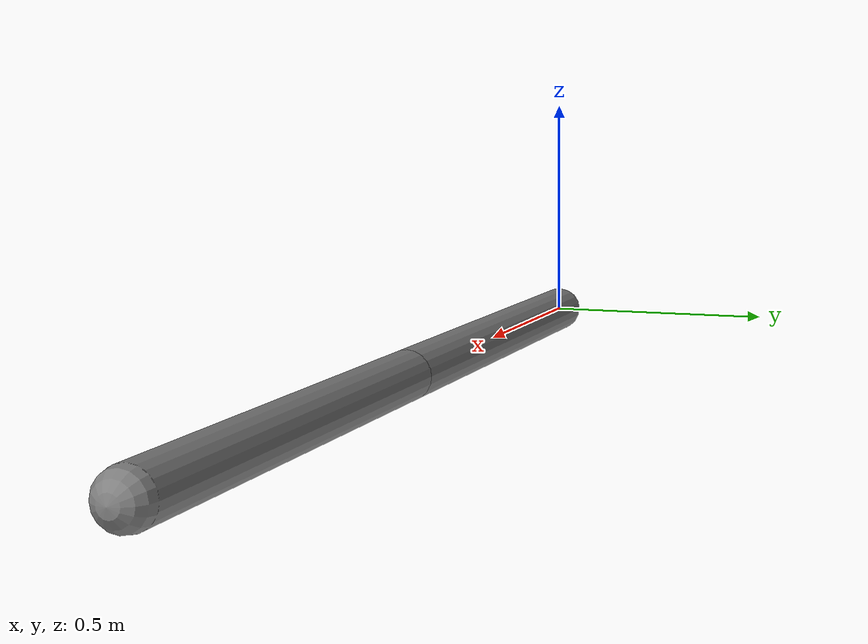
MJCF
<mujoco>
    <compiler angle="degree"/>
    <worldbody>
        <light directional="true" dir="0 -1 -1"/>
        <body name="upper_arm" pos="0 0 0">
            <joint name="your_joint_name" type="hinge" axis="0 1 0"/>
            <geom type="capsule" fromto="0 0 0 1 0 0" size="0.05"/>

            <!-- Lower arm attached below upper arm -->
            <body name="lower_arm" pos="1 0 0">
                <joint type="hinge" axis="0 1 0"/>
                <geom type="capsule" fromto="0 0 0 1 0 0" size="0.05"/>
            </body>
        </body>
        <body name="tip" pos="2 0 0">
            <site name="tip_site"/>
        </body>
    </worldbody>
    <actuator>
        <motor name="arm_motor" joint="your_joint_name" gear="100"/>
    </actuator>
    <sensor>
        <accelerometer name="acc_sensor" site="tip_site"/>
    </sensor>
</mujoco>
